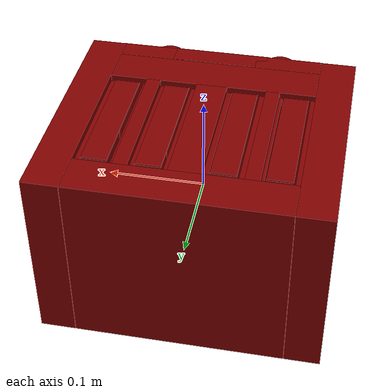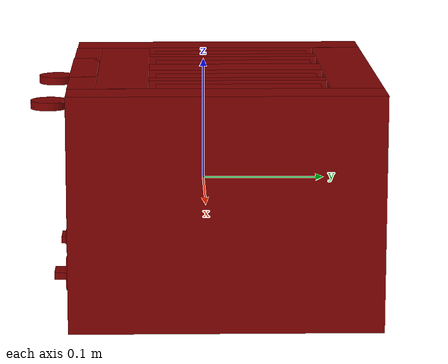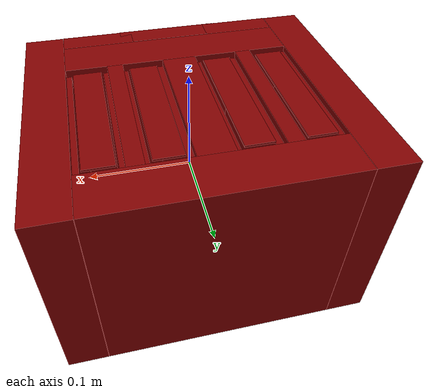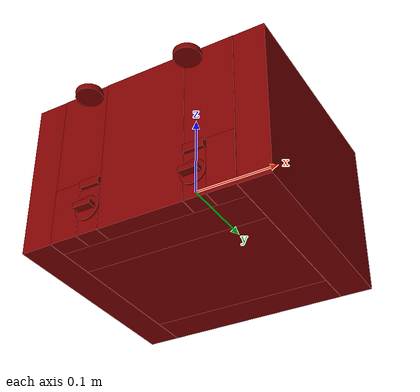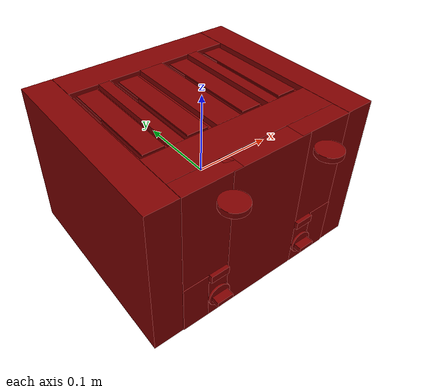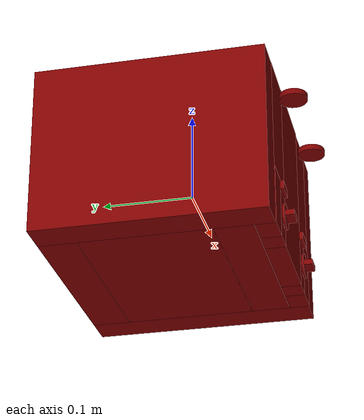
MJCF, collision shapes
<?xml version='1.0' encoding='UTF-8'?>
<mujoco model="model">
  <option timestep="0.002" gravity="0.0 0.0 -9.81"/>
  <compiler angle="radian"/>
  <asset>
    <mesh file="visuals/Body001.obj" name="Body001_vis"/>
    <mesh file="visuals/Body002.obj" name="Body002_vis"/>
    <mesh file="visuals/Button001.obj" name="Button001_vis"/>
    <mesh file="visuals/Button002.obj" name="Button002_vis"/>
    <mesh file="visuals/Knob001.obj" name="Knob001_vis"/>
    <mesh file="visuals/Knob002.obj" name="Knob002_vis"/>
    <mesh file="visuals/Lever001.obj" name="Lever001_vis"/>
    <mesh file="visuals/Lever002.obj" name="Lever002_vis"/>
    <texture file="visuals/T_BC001.png" name="Body001_material" type="2d"/>
    <material name="Body001_material" rgba="1 1 1 1.0" texture="Body001_material" shininess="0.4472135901451111" specular="2"/>
    <texture file="visuals/T_BC001.png" name="Body002_material" type="2d"/>
    <material name="Body002_material" rgba="1 1 1 1.0" texture="Body002_material" shininess="0.1" specular="3"/>
    <texture file="visuals/T_BC001.png" name="Button001_material" type="2d"/>
    <material name="Button001_material" rgba="1 1 1 1.0" texture="Button001_material" shininess="0.4472135901451111" specular="0.3103448502657381"/>
    <texture file="visuals/T_BC001.png" name="Button002_material" type="2d"/>
    <material name="Button002_material" rgba="1 1 1 1.0" texture="Button002_material" shininess="0.4472135901451111" specular="0.3103448502657381"/>
    <texture file="visuals/T_BC001.png" name="Knob001_material" type="2d"/>
    <material name="Knob001_material" rgba="1 1 1 1.0" texture="Knob001_material" shininess="0.4472135901451111" specular="1"/>
    <texture file="visuals/T_BC001.png" name="Knob002_material" type="2d"/>
    <material name="Knob002_material" rgba="1 1 1 1.0" texture="Knob002_material" shininess="0.4472135901451111" specular="1"/>
    <texture file="visuals/T_BC001.png" name="Lever001_material" type="2d"/>
    <material name="Lever001_material" rgba="1 1 1 1.0" texture="Lever001_material" shininess="0.4472135901451111" specular="1"/>
    <texture file="visuals/T_BC001.png" name="Lever002_material" type="2d"/>
    <material name="Lever002_material" rgba="1 1 1 1.0" texture="Lever002_material" shininess="0.4472135901451111" specular="1"/>
  </asset>
  <default>
    <default class="visual">
      <geom conaffinity="0" contype="0" group="1" type="mesh"/>
    </default>
    <default class="collision">
      <geom group="0" rgba="0.5 0 0 0.5"/>
    </default>
    <default class="spawn">
      <geom group="0" rgba="1 1 1 0.5" contype="0" conaffinity="0"/>
      <site group="0" rgba="1 1 1 0.5"/>
    </default>
    <default class="region">
      <geom group="1" conaffinity="0" contype="0" rgba="0 1 0 0"/>
    </default>
  </default>
  <worldbody>
    <body>
      <body name="object">
        <geom mesh="Body001_vis" type="mesh" solimp="0.998 0.998 0.001" solref="0.001 1" friction="0.95 0.3 0.1" class="visual" material="Body001_material"/>
        <geom class="collision" type="box" pos="-0.12359587848186493 0.015356372110545635 -6.262044189497828e-05" size="0.017872096970677376 0.12299121171236038 0.09347424656152725" quat="1.0 0.0 0.0 0.0" density="1000.0"/>
        <geom class="collision" type="box" pos="0.0 0.11751408129930496 -6.262044189497828e-05" size="0.10543525218963623 0.020833496004343033 0.09347424656152725" quat="1.0 0.0 0.0 0.0" density="1000.0"/>
        <geom class="collision" type="box" pos="0.12359587848186493 0.015356372110545635 -6.262044189497828e-05" size="0.017872096970677376 0.12299121171236038 0.09347424656152725" quat="1.0 0.0 0.0 0.0" density="1000.0"/>
        <geom class="collision" type="box" pos="0.0 -0.0654105618596077 -6.262044189497828e-05" size="0.10543525218963623 0.02068128064274788 0.09347424656152725" quat="1.0 0.0 0.0 0.0" density="1000.0"/>
        <geom class="collision" type="box" pos="0.0 0.026008769869804382 -0.08425549417734146" size="0.10543525218963623 0.0705835223197937 0.009281376376748085" quat="1.0 0.0 0.0 0.0" density="1000.0"/>
        <geom class="collision" type="box" pos="0.0 0.026008769869804382 0.009678319096565247" size="0.015541963279247284 0.0705835223197937 0.08373329788446426" quat="1.0 0.0 0.0 0.0" density="1000.0"/>
        <geom class="collision" type="box" pos="0.060414910316467285 0.026008769869804382 0.009678320959210396" size="0.007127175107598305 0.0705835223197937 0.08373988419771194" quat="1.0 0.0 0.0 0.0" density="1000.0"/>
        <geom class="collision" type="box" pos="-0.06237529590725899 0.026008769869804382 0.009678320959210396" size="0.007127175107598305 0.0705835223197937 0.08373962342739105" quat="1.0 0.0 0.0 0.0" density="1000.0"/>
        <geom class="collision" type="box" pos="0.0 -0.09764625877141953 -6.262864917516708e-05" size="0.04877220094203949 0.010851271450519562 0.09347424656152725" quat="1.0 0.0 0.0 0.0" density="1000.0"/>
        <geom class="collision" type="box" pos="-0.07158268988132477 -0.09715727716684341 0.032520730048418045" size="0.03385832905769348 0.010825005359947681 0.060890886932611465" quat="1.0 0.0 0.0 0.0" density="1000.0"/>
        <geom class="collision" type="box" pos="0.07158268988132477 -0.09715727716684341 0.032520730048418045" size="0.03385832533240318 0.010825003497302532 0.060890886932611465" quat="1.0 0.0 0.0 0.0" density="1000.0"/>
        <geom class="collision" type="box" pos="-0.08966203778982162 -0.09764625877141953 -0.06120593100786209" size="0.015778977423906326 0.010851271450519562 0.032330937683582306" quat="1.0 0.0 0.0 0.0" density="1000.0"/>
        <geom class="collision" type="box" pos="0.08966202288866043 -0.09764625877141953 -0.06120593100786209" size="0.015778983011841774 0.010851268656551838 0.03233093395829201" quat="1.0 0.0 0.0 0.0" density="1000.0"/>
        <geom class="collision" type="box" pos="-0.06131019815802574 -0.09764625877141953 -0.06638770550489426" size="0.01230659894645214 0.010851271450519562 0.02714916318655014" quat="1.0 0.0 0.0 0.0" density="1000.0"/>
        <geom class="collision" type="box" pos="0.061395350843667984 -0.09764625877141953 -0.06638771295547485" size="0.012287636287510395 0.010851268656551838 0.02714916318655014" quat="1.0 0.0 0.0 0.0" density="1000.0"/>
        <body name="Body002">
          <geom mesh="Body002_vis" type="mesh" solimp="0.998 0.998 0.001" solref="0.001 1" friction="0.95 0.3 0.1" class="visual" material="Body002_material"/>
          <geom class="collision" type="box" pos="0.1053571105003357 0.026008769869804382 0.0028622071258723736" size="0.004467664752155542 0.0705835223197937 0.08373754471540451" quat="1.0 0.0 0.0 0.0" density="1000.0"/>
          <geom class="collision" type="box" pos="0.06738638132810593 0.026008769869804382 0.002984043210744858" size="0.004467664752155542 0.0705835223197937 0.08373728394508362" quat="1.0 0.0 0.0 0.0" density="1000.0"/>
          <geom class="collision" type="box" pos="0.016760798171162605 0.026008769869804382 0.00308637460693717" size="0.004467664752155542 0.0705835223197937 0.08373702317476273" quat="1.0 0.0 0.0 0.0" density="1000.0"/>
          <geom class="collision" type="box" pos="0.05368540808558464 0.026008769869804382 0.0024558277800679207" size="0.004467664752155542 0.0705835223197937 0.08373676240444183" quat="1.0 0.0 0.0 0.0" density="1000.0"/>
          <geom class="collision" type="box" pos="-0.016427207738161087 0.026008769869804382 0.003063312266021967" size="0.004467664752155542 0.0705835223197937 0.08373650163412094" quat="1.0 0.0 0.0 0.0" density="1000.0"/>
          <geom class="collision" type="box" pos="-0.05355564132332802 0.026008769869804382 0.003019891446456313" size="0.004467664752155542 0.0705835223197937 0.08373624086380005" quat="1.0 0.0 0.0 0.0" density="1000.0"/>
          <geom class="collision" type="box" pos="-0.10527137666940689 0.026008769869804382 0.0037822723388671875" size="0.004467664752155542 0.0705835223197937 0.08373598009347916" quat="1.0 0.0 0.0 0.0" density="1000.0"/>
          <geom class="collision" type="box" pos="-0.067820705473423 0.026008769869804382 0.003245552536100149" size="0.004467664752155542 0.0705835223197937 0.08373571932315826" quat="1.0 0.0 0.0 0.0" density="1000.0"/>
        </body>
        <body name="Button001">
          <joint axis="0.0 1.0 0.0" pos="-0.06111370399594307 -0.10810773074626923 -0.03400947526097298" limited="true" name="Button001_joint" range="0.0 0.003" type="slide" damping="1" frictionloss="1" armature=".01" stiffness="0.05"/>
          <geom mesh="Button001_vis" type="mesh" solimp="0.998 0.998 0.001" solref="0.001 1" friction="0.95 0.3 0.1" class="visual" material="Button001_material"/>
          <geom class="collision" type="box" pos="-0.06105734780430794 -0.10847771912813187 -0.03392501920461655" size="0.011366881430149078 0.0033669923432171345 0.004586411640048027" quat="1.0 0.0 0.0 0.0" density="1000.0"/>
        </body>
        <body name="Button002">
          <joint axis="0.0 1.0 0.0" pos="0.06116006150841713 -0.10810773074626923 -0.03400947526097298" limited="true" name="Button002_joint" range="0.0 0.003" type="slide" damping="1" frictionloss="1" armature=".01" stiffness="0.05"/>
          <geom mesh="Button002_vis" type="mesh" solimp="0.998 0.998 0.001" solref="0.001 1" friction="0.95 0.3 0.1" class="visual" material="Button002_material"/>
          <geom class="collision" type="box" pos="0.061190277338027954 -0.10847771912813187 -0.03396518528461456" size="0.011366883292794228 0.0033669949043542147 0.004586411640048027" quat="1.0 0.0 0.0 0.0" density="1000.0"/>
        </body>
        <body name="Knob001">
          <joint axis="0.0 1.0 0.0" pos="-0.06111369654536247 -0.10812511295080185 -0.06550730019807816" limited="true" name="Knob001_joint" range="0.0 3.141592653589793" type="hinge" damping="0.05" armature="0.001"/>
          <geom mesh="Knob001_vis" type="mesh" solimp="0.998 0.998 0.001" solref="0.001 1" friction="0.95 0.3 0.1" class="visual" material="Knob001_material"/>
          <geom class="collision" type="cylinder" pos="-0.06111369654536247 -0.11081932485103607 -0.06550730019807816" size="0.013856115750968456 0.0011511534685268998" quat="0.7071067094802856 0.7071068286895752 0.0 0.0" density="1000.0"/>
          <geom class="collision" type="box" pos="-0.06105734780430794 -0.1164921224117279 -0.06557163596153259" size="0.010142200626432896 0.004901049192994833 0.002919602207839489" quat="1.0 0.0 0.0 0.0" density="1000.0"/>
        </body>
        <body name="Knob002">
          <joint axis="0.0 1.0 0.0" pos="0.06116006150841713 -0.10812511295080185 -0.06550730019807816" limited="true" name="Knob002_joint" range="0.0 3.141592653589793" type="hinge" damping="0.05" armature="0.001"/>
          <geom mesh="Knob002_vis" type="mesh" solimp="0.998 0.998 0.001" solref="0.001 1" friction="0.95 0.3 0.1" class="visual" material="Knob002_material"/>
          <geom class="collision" type="cylinder" pos="0.06116006150841713 -0.11081932485103607 -0.06550730019807816" size="0.013856115750968456 0.0011511534685268998" quat="0.7071067094802856 0.7071068286895752 0.0 0.0" density="1000.0"/>
          <geom class="collision" type="box" pos="0.060642439872026443 -0.1164921224117279 -0.06557163596153259" size="0.010142200626432896 0.004901049192994833 0.002919602207839489" quat="1.0 0.0 0.0 0.0" density="1000.0"/>
        </body>
        <body name="Lever001">
          <joint axis="0.0 0.0 -1.0" pos="-0.06111029535531998 -0.12187717854976654 0.07288717478513718" limited="true" name="Lever001_joint" range="0.0 0.075" type="slide" damping="1" frictionloss="1" armature=".01" stiffness="1" springref="-0.5"/>
          <geom mesh="Lever001_vis" type="mesh" solimp="0.998 0.998 0.001" solref="0.001 1" friction="0.95 0.3 0.1" class="visual" material="Lever001_material"/>
          <geom class="collision" type="cylinder" pos="-0.06114639714360237 -0.12370685487985611 0.07379462569952011" size="0.015032666735351086 0.0031625048723071814" quat="1.0 0.0 0.0 0.0" name="sideL_lever_knob" density="1000.0"/>
          <geom class="collision" type="box" pos="-0.0865340530872345 0.026008769869804382 0.09084386378526688" size="0.01249999925494194 0.06499999761581421 0.0008289467077702284" quat="1.0 0.0 0.0 0.0" name="sideL_slotL_floor" density="1000.0"/>
          <geom class="collision" type="box" pos="-0.035070475190877914 0.026008769869804382 0.09084386378526688" size="0.01249999925494194 0.06499999761581421 0.0008289467077702284" quat="1.0 0.0 0.0 0.0" name="sideL_slotR_floor" density="1000.0"/>
        </body>
        <body name="Lever002">
          <joint axis="0.0 0.0 -1.0" pos="0.06116345897316933 -0.12187717854976654 0.07288717478513718" limited="true" name="Lever002_joint" range="0.0 0.075" type="slide" damping="1" frictionloss="1" armature=".01" stiffness="1" springref="-0.5"/>
          <geom mesh="Lever002_vis" type="mesh" solimp="0.998 0.998 0.001" solref="0.001 1" friction="0.95 0.3 0.1" class="visual" material="Lever002_material"/>
          <geom class="collision" type="cylinder" pos="0.06116003170609474 -0.12370685487985611 0.07379462569952011" size="0.015032666735351086 0.0031625074334442616" quat="1.0 0.0 0.0 0.0" name="sideR_lever_knob" density="1000.0"/>
          <geom class="collision" type="box" pos="0.035070475190877914 0.026008769869804382 0.09084386378526688" size="0.01249999925494194 0.06499999761581421 0.0008289495017379522" quat="1.0 0.0 0.0 0.0" name="sideR_slotL_floor" density="1000.0"/>
          <geom class="collision" type="box" pos="0.0865340530872345 0.026008769869804382 0.09084386378526688" size="0.01249999925494194 0.06499999761581421 0.0008289495017379522" quat="1.0 0.0 0.0 0.0" name="sideR_slotR_floor" density="1000.0"/>
        </body>
        <geom class="region" name="reg_main" type="box" pos="3.725290298461914e-09 0.015164926648139954 0.0" size="0.14141330122947693 0.12308250367641449 0.09335094690322876"/>
      </body>
    </body>
  </worldbody>
  <actuator>
    <motor name="Button001_joint_actuator" joint="Button001_joint" gear="0.3"/>
    <motor name="Button002_joint_actuator" joint="Button002_joint" gear="0.3"/>
    <motor name="Knob001_joint_actuator" joint="Knob001_joint" gear="10"/>
    <motor name="Knob002_joint_actuator" joint="Knob002_joint" gear="10"/>
    <motor name="Lever001_joint_actuator" joint="Lever001_joint" gear="10"/>
    <motor name="Lever002_joint_actuator" joint="Lever002_joint" gear="10"/>
  </actuator>
</mujoco>
